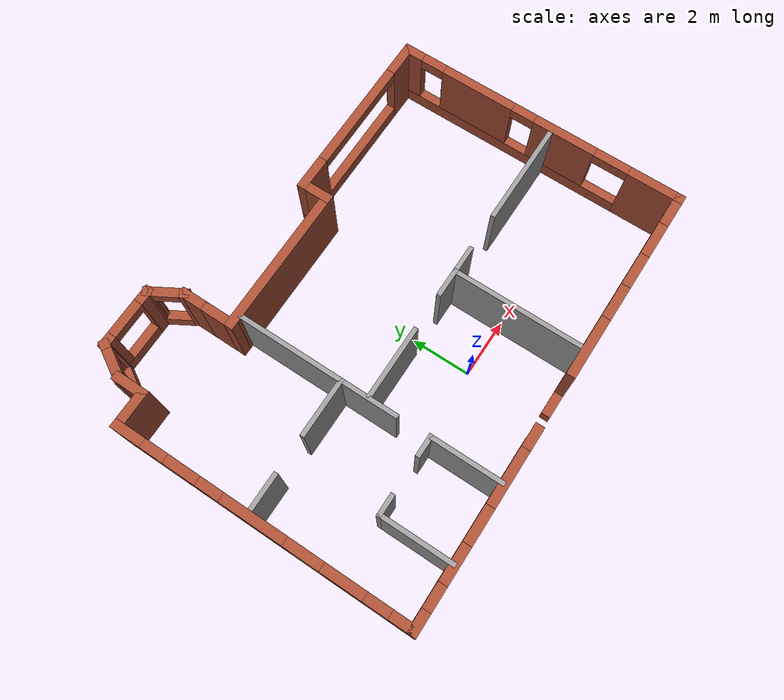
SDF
<?xml version='1.0'?>
<sdf version='1.6'>
  <model name='mybuilding'>
    <pose frame=''>0.115 3.1719 0 0 -0 0</pose>
    <link name='Wall_104'>
      <collision name='Wall_104_Collision'>
        <geometry>
          <box>
            <size>2.46958 0.15 2.5</size>
          </box>
        </geometry>
        <pose frame=''>0 0 1.25 0 -0 0</pose>
      </collision>
      <visual name='Wall_104_Visual'>
        <pose frame=''>0 0 1.25 0 -0 0</pose>
        <geometry>
          <box>
            <size>2.46958 0.15 2.5</size>
          </box>
        </geometry>
        <material>
          <script>
            <uri>file://media/materials/scripts/gazebo.material</uri>
            <name>Gazebo/Grey</name>
          </script>
          <ambient>1 1 1 1</ambient>
        </material>
        <meta>
          <layer>0</layer>
        </meta>
      </visual>
      <pose frame=''>-2.91739 -4.64446 0 0 -0 -1.5708</pose>
    </link>
    <link name='Wall_106'>
      <collision name='Wall_106_Collision'>
        <geometry>
          <box>
            <size>1 0.15 2.5</size>
          </box>
        </geometry>
        <pose frame=''>0 0 1.25 0 -0 0</pose>
      </collision>
      <visual name='Wall_106_Visual'>
        <pose frame=''>0 0 1.25 0 -0 0</pose>
        <geometry>
          <box>
            <size>1 0.15 2.5</size>
          </box>
        </geometry>
        <material>
          <script>
            <uri>file://media/materials/scripts/gazebo.material</uri>
            <name>Gazebo/Grey</name>
          </script>
          <ambient>1 1 1 1</ambient>
        </material>
        <meta>
          <layer>0</layer>
        </meta>
      </visual>
      <pose frame=''>2.09395 -1.40936 0 0 -0 0</pose>
    </link>
    <link name='Wall_108'>
      <collision name='Wall_108_Collision'>
        <geometry>
          <box>
            <size>3.5 0.15 2.5</size>
          </box>
        </geometry>
        <pose frame=''>0 0 1.25 0 -0 0</pose>
      </collision>
      <visual name='Wall_108_Visual'>
        <pose frame=''>0 0 1.25 0 -0 0</pose>
        <geometry>
          <box>
            <size>3.5 0.15 2.5</size>
          </box>
        </geometry>
        <material>
          <script>
            <uri>file://media/materials/scripts/gazebo.material</uri>
            <name>Gazebo/Grey</name>
          </script>
          <ambient>1 1 1 1</ambient>
        </material>
        <meta>
          <layer>0</layer>
        </meta>
      </visual>
      <pose frame=''>5.54395 -1.40936 0 0 -0 0</pose>
    </link>
    <link name='Wall_111'>
      <collision name='Wall_111_Collision'>
        <geometry>
          <box>
            <size>2 0.15 2.5</size>
          </box>
        </geometry>
        <pose frame=''>0 0 1.25 0 -0 0</pose>
      </collision>
      <visual name='Wall_111_Visual'>
        <pose frame=''>0 0 1.25 0 -0 0</pose>
        <geometry>
          <box>
            <size>2 0.15 2.5</size>
          </box>
        </geometry>
        <material>
          <script>
            <uri>file://media/materials/scripts/gazebo.material</uri>
            <name>Gazebo/Grey</name>
          </script>
          <ambient>1 1 1 1</ambient>
        </material>
        <meta>
          <layer>0</layer>
        </meta>
      </visual>
      <pose frame=''>-3.87183 -0.484139 0 0 -0 0</pose>
    </link>
    <link name='Wall_113'>
      <collision name='Wall_113_Collision'>
        <geometry>
          <box>
            <size>0.75 0.15 2.5</size>
          </box>
        </geometry>
        <pose frame=''>0 0 1.25 0 -0 0</pose>
      </collision>
      <visual name='Wall_113_Visual'>
        <pose frame=''>0 0 1.25 0 -0 0</pose>
        <geometry>
          <box>
            <size>0.75 0.15 2.5</size>
          </box>
        </geometry>
        <material>
          <script>
            <uri>file://media/materials/scripts/gazebo.material</uri>
            <name>Gazebo/Grey</name>
          </script>
          <ambient>1 1 1 1</ambient>
        </material>
        <meta>
          <layer>0</layer>
        </meta>
      </visual>
      <pose frame=''>-3.21739 -3.46946 0 0 -0 3.14159</pose>
    </link>
    <link name='Wall_120'>
      <collision name='Wall_120_Collision'>
        <geometry>
          <box>
            <size>0.75 0.15 2.5</size>
          </box>
        </geometry>
        <pose frame=''>0 0 1.25 0 -0 0</pose>
      </collision>
      <visual name='Wall_120_Visual'>
        <pose frame=''>0 0 1.25 0 -0 0</pose>
        <geometry>
          <box>
            <size>0.75 0.15 2.5</size>
          </box>
        </geometry>
        <material>
          <script>
            <uri>file://media/materials/scripts/gazebo.material</uri>
            <name>Gazebo/Grey</name>
          </script>
          <ambient>1 1 1 1</ambient>
        </material>
        <meta>
          <layer>0</layer>
        </meta>
      </visual>
      <pose frame=''>-5.16739 -3.46946 0 0 -0 3.14159</pose>
    </link>
    <link name='Wall_121'>
      <collision name='Wall_121_Collision'>
        <geometry>
          <box>
            <size>2.5 0.15 2.5</size>
          </box>
        </geometry>
        <pose frame=''>0 0 1.25 0 -0 0</pose>
      </collision>
      <visual name='Wall_121_Visual'>
        <pose frame=''>0 0 1.25 0 -0 0</pose>
        <geometry>
          <box>
            <size>2.5 0.15 2.5</size>
          </box>
        </geometry>
        <material>
          <script>
            <uri>file://media/materials/scripts/gazebo.material</uri>
            <name>Gazebo/Grey</name>
          </script>
          <ambient>1 1 1 1</ambient>
        </material>
        <meta>
          <layer>0</layer>
        </meta>
      </visual>
      <pose frame=''>-5.46739 -4.64446 0 0 -0 -1.5708</pose>
    </link>
    <link name='Wall_123'>
      <collision name='Wall_123_Collision'>
        <geometry>
          <box>
            <size>1 0.15 2.5</size>
          </box>
        </geometry>
        <pose frame=''>0 0 1.25 0 -0 0</pose>
      </collision>
      <visual name='Wall_123_Visual'>
        <pose frame=''>0 0 1.25 0 -0 0</pose>
        <geometry>
          <box>
            <size>1 0.15 2.5</size>
          </box>
        </geometry>
        <material>
          <script>
            <uri>file://media/materials/scripts/gazebo.material</uri>
            <name>Gazebo/Grey</name>
          </script>
          <ambient>1 1 1 1</ambient>
        </material>
        <meta>
          <layer>0</layer>
        </meta>
      </visual>
      <pose frame=''>1.24395 -1.40936 0 0 -0 3.14159</pose>
    </link>
    <link name='Wall_127'>
      <collision name='Wall_127_Collision'>
        <geometry>
          <box>
            <size>3.75 0.15 2.5</size>
          </box>
        </geometry>
        <pose frame=''>0 0 1.25 0 -0 0</pose>
      </collision>
      <visual name='Wall_127_Visual'>
        <pose frame=''>0 0 1.25 0 -0 0</pose>
        <geometry>
          <box>
            <size>3.75 0.15 2.5</size>
          </box>
        </geometry>
        <material>
          <script>
            <uri>file://media/materials/scripts/gazebo.material</uri>
            <name>Gazebo/Grey</name>
          </script>
          <ambient>1 1 1 1</ambient>
        </material>
        <meta>
          <layer>0</layer>
        </meta>
      </visual>
      <pose frame=''>-2.94683 1.31586 0 0 -0 1.5708</pose>
    </link>
    <link name='Wall_129'>
      <collision name='Wall_129_Collision'>
        <geometry>
          <box>
            <size>2 0.15 2.5</size>
          </box>
        </geometry>
        <pose frame=''>0 0 1.25 0 -0 0</pose>
      </collision>
      <visual name='Wall_129_Visual'>
        <pose frame=''>0 0 1.25 0 -0 0</pose>
        <geometry>
          <box>
            <size>2 0.15 2.5</size>
          </box>
        </geometry>
        <material>
          <script>
            <uri>file://media/materials/scripts/gazebo.material</uri>
            <name>Gazebo/Grey</name>
          </script>
          <ambient>1 1 1 1</ambient>
        </material>
        <meta>
          <layer>0</layer>
        </meta>
      </visual>
      <pose frame=''>-2.94683 -1.40914 0 0 -0 -1.5708</pose>
    </link>
    <link name='Wall_132'>
      <collision name='Wall_132_Collision'>
        <geometry>
          <box>
            <size>2.5 0.15 2.5</size>
          </box>
        </geometry>
        <pose frame=''>0 0 1.25 0 -0 0</pose>
      </collision>
      <visual name='Wall_132_Visual'>
        <pose frame=''>0 0 1.25 0 -0 0</pose>
        <geometry>
          <box>
            <size>2.5 0.15 2.5</size>
          </box>
        </geometry>
        <material>
          <script>
            <uri>file://media/materials/scripts/gazebo.material</uri>
            <name>Gazebo/Grey</name>
          </script>
          <ambient>1 1 1 1</ambient>
        </material>
        <meta>
          <layer>0</layer>
        </meta>
      </visual>
      <pose frame=''>-1.70605 -1.40936 0 0 -0 3.14159</pose>
    </link>
    <link name='Wall_50'>
      <pose frame=''>-7.435 -0.928903 0 0 -0 -1.5708</pose>
      <visual name='Wall_50_Visual_0'>
        <pose frame=''>-4.54792 0 1.25 0 -0 0</pose>
        <geometry>
          <box>
            <size>1.05393 0.3 2.5</size>
          </box>
        </geometry>
        <material>
          <script>
            <uri>file://media/materials/scripts/gazebo.material</uri>
            <name>Gazebo/Bricks</name>
          </script>
          <ambient>1 1 1 1</ambient>
        </material>
        <meta>
          <layer>0</layer>
        </meta>
      </visual>
      <collision name='Wall_50_Collision_0'>
        <geometry>
          <box>
            <size>1.05393 0.3 2.5</size>
          </box>
        </geometry>
        <pose frame=''>-4.54792 0 1.25 0 -0 0</pose>
      </collision>
      <visual name='Wall_50_Visual_1'>
        <pose frame=''>0.526964 0 0.25 0 -0 0</pose>
        <geometry>
          <box>
            <size>9.09584 0.3 0.5</size>
          </box>
        </geometry>
        <material>
          <script>
            <uri>file://media/materials/scripts/gazebo.material</uri>
            <name>Gazebo/Bricks</name>
          </script>
          <ambient>1 1 1 1</ambient>
        </material>
        <meta>
          <layer>0</layer>
        </meta>
      </visual>
      <collision name='Wall_50_Collision_1'>
        <geometry>
          <box>
            <size>9.09584 0.3 0.5</size>
          </box>
        </geometry>
        <pose frame=''>0.526964 0 0.25 0 -0 0</pose>
      </collision>
      <visual name='Wall_50_Visual_2'>
        <pose frame=''>-2.66775 0 1.5 0 -0 0</pose>
        <geometry>
          <box>
            <size>1.10642 0.3 2</size>
          </box>
        </geometry>
        <material>
          <script>
            <uri>file://media/materials/scripts/gazebo.material</uri>
            <name>Gazebo/Bricks</name>
          </script>
          <ambient>1 1 1 1</ambient>
        </material>
        <meta>
          <layer>0</layer>
        </meta>
      </visual>
      <collision name='Wall_50_Collision_2'>
        <geometry>
          <box>
            <size>1.10642 0.3 2</size>
          </box>
        </geometry>
        <pose frame=''>-2.66775 0 1.5 0 -0 0</pose>
      </collision>
      <visual name='Wall_50_Visual_3'>
        <pose frame=''>-0.24918 0 1.5 0 -0 0</pose>
        <geometry>
          <box>
            <size>2.13072 0.3 2</size>
          </box>
        </geometry>
        <material>
          <script>
            <uri>file://media/materials/scripts/gazebo.material</uri>
            <name>Gazebo/Bricks</name>
          </script>
          <ambient>1 1 1 1</ambient>
        </material>
        <meta>
          <layer>0</layer>
        </meta>
      </visual>
      <collision name='Wall_50_Collision_3'>
        <geometry>
          <box>
            <size>2.13072 0.3 2</size>
          </box>
        </geometry>
        <pose frame=''>-0.24918 0 1.5 0 -0 0</pose>
      </collision>
      <visual name='Wall_50_Visual_4'>
        <pose frame=''>2.70551 0 1.5 0 -0 0</pose>
        <geometry>
          <box>
            <size>1.37865 0.3 2</size>
          </box>
        </geometry>
        <material>
          <script>
            <uri>file://media/materials/scripts/gazebo.material</uri>
            <name>Gazebo/Bricks</name>
          </script>
          <ambient>1 1 1 1</ambient>
        </material>
        <meta>
          <layer>0</layer>
        </meta>
      </visual>
      <collision name='Wall_50_Collision_4'>
        <geometry>
          <box>
            <size>1.37865 0.3 2</size>
          </box>
        </geometry>
        <pose frame=''>2.70551 0 1.5 0 -0 0</pose>
      </collision>
      <visual name='Wall_50_Visual_5'>
        <pose frame=''>4.63486 0 1.5 0 -0 0</pose>
        <geometry>
          <box>
            <size>0.880056 0.3 2</size>
          </box>
        </geometry>
        <material>
          <script>
            <uri>file://media/materials/scripts/gazebo.material</uri>
            <name>Gazebo/Bricks</name>
          </script>
          <ambient>1 1 1 1</ambient>
        </material>
        <meta>
          <layer>0</layer>
        </meta>
      </visual>
      <collision name='Wall_50_Collision_5'>
        <geometry>
          <box>
            <size>0.880056 0.3 2</size>
          </box>
        </geometry>
        <pose frame=''>4.63486 0 1.5 0 -0 0</pose>
      </collision>
      <visual name='Wall_50_Visual_6'>
        <pose frame=''>-3.62096 0 2.3 0 -0 0</pose>
        <geometry>
          <box>
            <size>0.8 0.3 0.4</size>
          </box>
        </geometry>
        <material>
          <script>
            <uri>file://media/materials/scripts/gazebo.material</uri>
            <name>Gazebo/Bricks</name>
          </script>
          <ambient>1 1 1 1</ambient>
        </material>
        <meta>
          <layer>0</layer>
        </meta>
      </visual>
      <collision name='Wall_50_Collision_6'>
        <geometry>
          <box>
            <size>0.8 0.3 0.4</size>
          </box>
        </geometry>
        <pose frame=''>-3.62096 0 2.3 0 -0 0</pose>
      </collision>
      <visual name='Wall_50_Visual_7'>
        <pose frame=''>-1.71454 0 2.3 0 -0 0</pose>
        <geometry>
          <box>
            <size>0.8 0.3 0.4</size>
          </box>
        </geometry>
        <material>
          <script>
            <uri>file://media/materials/scripts/gazebo.material</uri>
            <name>Gazebo/Bricks</name>
          </script>
          <ambient>1 1 1 1</ambient>
        </material>
        <meta>
          <layer>0</layer>
        </meta>
      </visual>
      <collision name='Wall_50_Collision_7'>
        <geometry>
          <box>
            <size>0.8 0.3 0.4</size>
          </box>
        </geometry>
        <pose frame=''>-1.71454 0 2.3 0 -0 0</pose>
      </collision>
      <visual name='Wall_50_Visual_8'>
        <pose frame=''>1.41618 0 2.3 0 -0 0</pose>
        <geometry>
          <box>
            <size>1.2 0.3 0.4</size>
          </box>
        </geometry>
        <material>
          <script>
            <uri>file://media/materials/scripts/gazebo.material</uri>
            <name>Gazebo/Bricks</name>
          </script>
          <ambient>1 1 1 1</ambient>
        </material>
        <meta>
          <layer>0</layer>
        </meta>
      </visual>
      <collision name='Wall_50_Collision_8'>
        <geometry>
          <box>
            <size>1.2 0.3 0.4</size>
          </box>
        </geometry>
        <pose frame=''>1.41618 0 2.3 0 -0 0</pose>
      </collision>
      <visual name='Wall_50_Visual_9'>
        <pose frame=''>3.79483 0 2.3 0 -0 0</pose>
        <geometry>
          <box>
            <size>0.8 0.3 0.4</size>
          </box>
        </geometry>
        <material>
          <script>
            <uri>file://media/materials/scripts/gazebo.material</uri>
            <name>Gazebo/Bricks</name>
          </script>
          <ambient>1 1 1 1</ambient>
        </material>
        <meta>
          <layer>0</layer>
        </meta>
      </visual>
      <collision name='Wall_50_Collision_9'>
        <geometry>
          <box>
            <size>0.8 0.3 0.4</size>
          </box>
        </geometry>
        <pose frame=''>3.79483 0 2.3 0 -0 0</pose>
      </collision>
    </link>
    <link name='Wall_51'>
      <pose frame=''>-0 -5.8539 0 0 -0 0</pose>
      <visual name='Wall_51_Visual_0'>
        <pose frame=''>-7.21587 0 1.25 0 -0 0</pose>
        <geometry>
          <box>
            <size>0.738261 0.3 2.5</size>
          </box>
        </geometry>
        <material>
          <script>
            <uri>file://media/materials/scripts/gazebo.material</uri>
            <name>Gazebo/Bricks</name>
          </script>
          <ambient>1 1 1 1</ambient>
        </material>
        <meta>
          <layer>0</layer>
        </meta>
      </visual>
      <collision name='Wall_51_Collision_0'>
        <geometry>
          <box>
            <size>0.738261 0.3 2.5</size>
          </box>
        </geometry>
        <pose frame=''>-7.21587 0 1.25 0 -0 0</pose>
      </collision>
      <visual name='Wall_51_Visual_1'>
        <pose frame=''>3.76088 0 0.25 0 -0 0</pose>
        <geometry>
          <box>
            <size>7.64824 0.3 0.5</size>
          </box>
        </geometry>
        <material>
          <script>
            <uri>file://media/materials/scripts/gazebo.material</uri>
            <name>Gazebo/Bricks</name>
          </script>
          <ambient>1 1 1 1</ambient>
        </material>
        <meta>
          <layer>0</layer>
        </meta>
      </visual>
      <collision name='Wall_51_Collision_1'>
        <geometry>
          <box>
            <size>7.64824 0.3 0.5</size>
          </box>
        </geometry>
        <pose frame=''>3.76088 0 0.25 0 -0 0</pose>
      </collision>
      <visual name='Wall_51_Visual_2'>
        <pose frame=''>-3.90499 0 0.25 0 -0 0</pose>
        <geometry>
          <box>
            <size>5.8835 0.3 0.5</size>
          </box>
        </geometry>
        <material>
          <script>
            <uri>file://media/materials/scripts/gazebo.material</uri>
            <name>Gazebo/Bricks</name>
          </script>
          <ambient>1 1 1 1</ambient>
        </material>
        <meta>
          <layer>0</layer>
        </meta>
      </visual>
      <collision name='Wall_51_Collision_2'>
        <geometry>
          <box>
            <size>5.8835 0.3 0.5</size>
          </box>
        </geometry>
        <pose frame=''>-3.90499 0 0.25 0 -0 0</pose>
      </collision>
      <visual name='Wall_51_Visual_3'>
        <pose frame=''>1.77472 0 1.5 0 -0 0</pose>
        <geometry>
          <box>
            <size>2.08637 0.3 2</size>
          </box>
        </geometry>
        <material>
          <script>
            <uri>file://media/materials/scripts/gazebo.material</uri>
            <name>Gazebo/Bricks</name>
          </script>
          <ambient>1 1 1 1</ambient>
        </material>
        <meta>
          <layer>0</layer>
        </meta>
      </visual>
      <collision name='Wall_51_Collision_3'>
        <geometry>
          <box>
            <size>2.08637 0.3 2</size>
          </box>
        </geometry>
        <pose frame=''>1.77472 0 1.5 0 -0 0</pose>
      </collision>
      <visual name='Wall_51_Visual_4'>
        <pose frame=''>4.60722 0 1.5 0 -0 0</pose>
        <geometry>
          <box>
            <size>1.17865 0.3 2</size>
          </box>
        </geometry>
        <material>
          <script>
            <uri>file://media/materials/scripts/gazebo.material</uri>
            <name>Gazebo/Bricks</name>
          </script>
          <ambient>1 1 1 1</ambient>
        </material>
        <meta>
          <layer>0</layer>
        </meta>
      </visual>
      <collision name='Wall_51_Collision_4'>
        <geometry>
          <box>
            <size>1.17865 0.3 2</size>
          </box>
        </geometry>
        <pose frame=''>4.60722 0 1.5 0 -0 0</pose>
      </collision>
      <visual name='Wall_51_Visual_5'>
        <pose frame=''>6.99077 0 1.5 0 -0 0</pose>
        <geometry>
          <box>
            <size>1.18845 0.3 2</size>
          </box>
        </geometry>
        <material>
          <script>
            <uri>file://media/materials/scripts/gazebo.material</uri>
            <name>Gazebo/Bricks</name>
          </script>
          <ambient>1 1 1 1</ambient>
        </material>
        <meta>
          <layer>0</layer>
        </meta>
      </visual>
      <collision name='Wall_51_Collision_5'>
        <geometry>
          <box>
            <size>1.18845 0.3 2</size>
          </box>
        </geometry>
        <pose frame=''>6.99077 0 1.5 0 -0 0</pose>
      </collision>
      <visual name='Wall_51_Visual_6'>
        <pose frame=''>-5.44049 0 1.5 0 -0 0</pose>
        <geometry>
          <box>
            <size>1.21249 0.3 2</size>
          </box>
        </geometry>
        <material>
          <script>
            <uri>file://media/materials/scripts/gazebo.material</uri>
            <name>Gazebo/Bricks</name>
          </script>
          <ambient>1 1 1 1</ambient>
        </material>
        <meta>
          <layer>0</layer>
        </meta>
      </visual>
      <collision name='Wall_51_Collision_6'>
        <geometry>
          <box>
            <size>1.21249 0.3 2</size>
          </box>
        </geometry>
        <pose frame=''>-5.44049 0 1.5 0 -0 0</pose>
      </collision>
      <visual name='Wall_51_Visual_7'>
        <pose frame=''>-2.69613 0 1.5 0 -0 0</pose>
        <geometry>
          <box>
            <size>1.87624 0.3 2</size>
          </box>
        </geometry>
        <material>
          <script>
            <uri>file://media/materials/scripts/gazebo.material</uri>
            <name>Gazebo/Bricks</name>
          </script>
          <ambient>1 1 1 1</ambient>
        </material>
        <meta>
          <layer>0</layer>
        </meta>
      </visual>
      <collision name='Wall_51_Collision_7'>
        <geometry>
          <box>
            <size>1.87624 0.3 2</size>
          </box>
        </geometry>
        <pose frame=''>-2.69613 0 1.5 0 -0 0</pose>
      </collision>
      <visual name='Wall_51_Visual_8'>
        <pose frame=''>-2.69613 0 1.5 0 -0 0</pose>
        <geometry>
          <box>
            <size>1.87624 0.3 2</size>
          </box>
        </geometry>
        <material>
          <script>
            <uri>file://media/materials/scripts/gazebo.material</uri>
            <name>Gazebo/Bricks</name>
          </script>
          <ambient>1 1 1 1</ambient>
        </material>
        <meta>
          <layer>0</layer>
        </meta>
      </visual>
      <collision name='Wall_51_Collision_8'>
        <geometry>
          <box>
            <size>1.87624 0.3 2</size>
          </box>
        </geometry>
        <pose frame=''>-2.69613 0 1.5 0 -0 0</pose>
      </collision>
      <visual name='Wall_51_Visual_9'>
        <pose frame=''>-6.44674 0 2.3 0 -0 0</pose>
        <geometry>
          <box>
            <size>0.8 0.3 0.4</size>
          </box>
        </geometry>
        <material>
          <script>
            <uri>file://media/materials/scripts/gazebo.material</uri>
            <name>Gazebo/Bricks</name>
          </script>
          <ambient>1 1 1 1</ambient>
        </material>
        <meta>
          <layer>0</layer>
        </meta>
      </visual>
      <collision name='Wall_51_Collision_9'>
        <geometry>
          <box>
            <size>0.8 0.3 0.4</size>
          </box>
        </geometry>
        <pose frame=''>-6.44674 0 2.3 0 -0 0</pose>
      </collision>
      <visual name='Wall_51_Visual_10'>
        <pose frame=''>3.4179 0 2.3 0 -0 0</pose>
        <geometry>
          <box>
            <size>1.2 0.3 0.4</size>
          </box>
        </geometry>
        <material>
          <script>
            <uri>file://media/materials/scripts/gazebo.material</uri>
            <name>Gazebo/Bricks</name>
          </script>
          <ambient>1 1 1 1</ambient>
        </material>
        <meta>
          <layer>0</layer>
        </meta>
      </visual>
      <collision name='Wall_51_Collision_10'>
        <geometry>
          <box>
            <size>1.2 0.3 0.4</size>
          </box>
        </geometry>
        <pose frame=''>3.4179 0 2.3 0 -0 0</pose>
      </collision>
      <visual name='Wall_51_Visual_11'>
        <pose frame=''>5.79655 0 2.3 0 -0 0</pose>
        <geometry>
          <box>
            <size>1.2 0.3 0.4</size>
          </box>
        </geometry>
        <material>
          <script>
            <uri>file://media/materials/scripts/gazebo.material</uri>
            <name>Gazebo/Bricks</name>
          </script>
          <ambient>1 1 1 1</ambient>
        </material>
        <meta>
          <layer>0</layer>
        </meta>
      </visual>
      <collision name='Wall_51_Collision_11'>
        <geometry>
          <box>
            <size>1.2 0.3 0.4</size>
          </box>
        </geometry>
        <pose frame=''>5.79655 0 2.3 0 -0 0</pose>
      </collision>
      <visual name='Wall_51_Visual_12'>
        <pose frame=''>-4.23425 0 2.3 0 -0 0</pose>
        <geometry>
          <box>
            <size>1.2 0.3 0.4</size>
          </box>
        </geometry>
        <material>
          <script>
            <uri>file://media/materials/scripts/gazebo.material</uri>
            <name>Gazebo/Bricks</name>
          </script>
          <ambient>1 1 1 1</ambient>
        </material>
        <meta>
          <layer>0</layer>
        </meta>
      </visual>
      <collision name='Wall_51_Collision_12'>
        <geometry>
          <box>
            <size>1.2 0.3 0.4</size>
          </box>
        </geometry>
        <pose frame=''>-4.23425 0 2.3 0 -0 0</pose>
      </collision>
      <visual name='Wall_51_Visual_13'>
        <pose frame=''>-1.36062 0 2.3 0 -0 0</pose>
        <geometry>
          <box>
            <size>0.79477 0.3 0.4</size>
          </box>
        </geometry>
        <material>
          <script>
            <uri>file://media/materials/scripts/gazebo.material</uri>
            <name>Gazebo/Bricks</name>
          </script>
          <ambient>1 1 1 1</ambient>
        </material>
        <meta>
          <layer>0</layer>
        </meta>
      </visual>
      <collision name='Wall_51_Collision_13'>
        <geometry>
          <box>
            <size>0.79477 0.3 0.4</size>
          </box>
        </geometry>
        <pose frame=''>-1.36062 0 2.3 0 -0 0</pose>
      </collision>
      <visual name='Wall_51_Visual_14'>
        <pose frame=''>-1.36062 0 2.3 0 -0 0</pose>
        <geometry>
          <box>
            <size>0.79477 0.3 0.4</size>
          </box>
        </geometry>
        <material>
          <script>
            <uri>file://media/materials/scripts/gazebo.material</uri>
            <name>Gazebo/Bricks</name>
          </script>
          <ambient>1 1 1 1</ambient>
        </material>
        <meta>
          <layer>0</layer>
        </meta>
      </visual>
      <collision name='Wall_51_Collision_14'>
        <geometry>
          <box>
            <size>0.79477 0.3 0.4</size>
          </box>
        </geometry>
        <pose frame=''>-1.36062 0 2.3 0 -0 0</pose>
      </collision>
    </link>
    <link name='Wall_52'>
      <pose frame=''>7.435 -0.928903 0 0 -0 1.5708</pose>
      <visual name='Wall_52_Visual_0'>
        <pose frame=''>-4.13433 0 1.25 0 -0 0</pose>
        <geometry>
          <box>
            <size>1.88156 0.3 2.5</size>
          </box>
        </geometry>
        <material>
          <script>
            <uri>file://media/materials/scripts/gazebo.material</uri>
            <name>Gazebo/Bricks</name>
          </script>
          <ambient>1 1 1 1</ambient>
        </material>
        <meta>
          <layer>0</layer>
        </meta>
      </visual>
      <collision name='Wall_52_Collision_0'>
        <geometry>
          <box>
            <size>1.88156 0.3 2.5</size>
          </box>
        </geometry>
        <pose frame=''>-4.13433 0 1.25 0 -0 0</pose>
      </collision>
      <visual name='Wall_52_Visual_1'>
        <pose frame=''>0.940781 0 0.25 0 -0 0</pose>
        <geometry>
          <box>
            <size>8.26867 0.3 0.5</size>
          </box>
        </geometry>
        <material>
          <script>
            <uri>file://media/materials/scripts/gazebo.material</uri>
            <name>Gazebo/Bricks</name>
          </script>
          <ambient>1 1 1 1</ambient>
        </material>
        <meta>
          <layer>0</layer>
        </meta>
      </visual>
      <collision name='Wall_52_Collision_1'>
        <geometry>
          <box>
            <size>8.26867 0.3 0.5</size>
          </box>
        </geometry>
        <pose frame=''>0.940781 0 0.25 0 -0 0</pose>
      </collision>
      <visual name='Wall_52_Visual_2'>
        <pose frame=''>-0.919448 0 1.5 0 -0 0</pose>
        <geometry>
          <box>
            <size>2.14821 0.3 2</size>
          </box>
        </geometry>
        <material>
          <script>
            <uri>file://media/materials/scripts/gazebo.material</uri>
            <name>Gazebo/Bricks</name>
          </script>
          <ambient>1 1 1 1</ambient>
        </material>
        <meta>
          <layer>0</layer>
        </meta>
      </visual>
      <collision name='Wall_52_Collision_2'>
        <geometry>
          <box>
            <size>2.14821 0.3 2</size>
          </box>
        </geometry>
        <pose frame=''>-0.919448 0 1.5 0 -0 0</pose>
      </collision>
      <visual name='Wall_52_Visual_3'>
        <pose frame=''>2.23647 0 1.5 0 -0 0</pose>
        <geometry>
          <box>
            <size>2.56363 0.3 2</size>
          </box>
        </geometry>
        <material>
          <script>
            <uri>file://media/materials/scripts/gazebo.material</uri>
            <name>Gazebo/Bricks</name>
          </script>
          <ambient>1 1 1 1</ambient>
        </material>
        <meta>
          <layer>0</layer>
        </meta>
      </visual>
      <collision name='Wall_52_Collision_3'>
        <geometry>
          <box>
            <size>2.56363 0.3 2</size>
          </box>
        </geometry>
        <pose frame=''>2.23647 0 1.5 0 -0 0</pose>
      </collision>
      <visual name='Wall_52_Visual_4'>
        <pose frame=''>4.6967 0 1.5 0 -0 0</pose>
        <geometry>
          <box>
            <size>0.756827 0.3 2</size>
          </box>
        </geometry>
        <material>
          <script>
            <uri>file://media/materials/scripts/gazebo.material</uri>
            <name>Gazebo/Bricks</name>
          </script>
          <ambient>1 1 1 1</ambient>
        </material>
        <meta>
          <layer>0</layer>
        </meta>
      </visual>
      <collision name='Wall_52_Collision_4'>
        <geometry>
          <box>
            <size>0.756827 0.3 2</size>
          </box>
        </geometry>
        <pose frame=''>4.6967 0 1.5 0 -0 0</pose>
      </collision>
      <visual name='Wall_52_Visual_5'>
        <pose frame=''>-2.59355 0 2.3 0 -0 0</pose>
        <geometry>
          <box>
            <size>1.2 0.3 0.4</size>
          </box>
        </geometry>
        <material>
          <script>
            <uri>file://media/materials/scripts/gazebo.material</uri>
            <name>Gazebo/Bricks</name>
          </script>
          <ambient>1 1 1 1</ambient>
        </material>
        <meta>
          <layer>0</layer>
        </meta>
      </visual>
      <collision name='Wall_52_Collision_5'>
        <geometry>
          <box>
            <size>1.2 0.3 0.4</size>
          </box>
        </geometry>
        <pose frame=''>-2.59355 0 2.3 0 -0 0</pose>
      </collision>
      <visual name='Wall_52_Visual_6'>
        <pose frame=''>0.554658 0 2.3 0 -0 0</pose>
        <geometry>
          <box>
            <size>0.8 0.3 0.4</size>
          </box>
        </geometry>
        <material>
          <script>
            <uri>file://media/materials/scripts/gazebo.material</uri>
            <name>Gazebo/Bricks</name>
          </script>
          <ambient>1 1 1 1</ambient>
        </material>
        <meta>
          <layer>0</layer>
        </meta>
      </visual>
      <collision name='Wall_52_Collision_6'>
        <geometry>
          <box>
            <size>0.8 0.3 0.4</size>
          </box>
        </geometry>
        <pose frame=''>0.554658 0 2.3 0 -0 0</pose>
      </collision>
      <visual name='Wall_52_Visual_7'>
        <pose frame=''>3.91829 0 2.3 0 -0 0</pose>
        <geometry>
          <box>
            <size>0.8 0.3 0.4</size>
          </box>
        </geometry>
        <material>
          <script>
            <uri>file://media/materials/scripts/gazebo.material</uri>
            <name>Gazebo/Bricks</name>
          </script>
          <ambient>1 1 1 1</ambient>
        </material>
        <meta>
          <layer>0</layer>
        </meta>
      </visual>
      <collision name='Wall_52_Collision_7'>
        <geometry>
          <box>
            <size>0.8 0.3 0.4</size>
          </box>
        </geometry>
        <pose frame=''>3.91829 0 2.3 0 -0 0</pose>
      </collision>
    </link>
    <link name='Wall_57'>
      <pose frame=''>4.5 3.9961 0 0 -0 3.14159</pose>
      <visual name='Wall_57_Visual_0'>
        <pose frame=''>-2.49359 0 1.25 0 -0 0</pose>
        <geometry>
          <box>
            <size>1.1832 0.3 2.5</size>
          </box>
        </geometry>
        <material>
          <script>
            <uri>file://media/materials/scripts/gazebo.material</uri>
            <name>Gazebo/Bricks</name>
          </script>
          <ambient>1 1 1 1</ambient>
        </material>
        <meta>
          <layer>0</layer>
        </meta>
      </visual>
      <collision name='Wall_57_Collision_0'>
        <geometry>
          <box>
            <size>1.1832 0.3 2.5</size>
          </box>
        </geometry>
        <pose frame=''>-2.49359 0 1.25 0 -0 0</pose>
      </collision>
      <visual name='Wall_57_Visual_1'>
        <pose frame=''>0.591601 0 0.25 0 -0 0</pose>
        <geometry>
          <box>
            <size>4.98717 0.3 0.5</size>
          </box>
        </geometry>
        <material>
          <script>
            <uri>file://media/materials/scripts/gazebo.material</uri>
            <name>Gazebo/Bricks</name>
          </script>
          <ambient>1 1 1 1</ambient>
        </material>
        <meta>
          <layer>0</layer>
        </meta>
      </visual>
      <collision name='Wall_57_Collision_1'>
        <geometry>
          <box>
            <size>4.98717 0.3 0.5</size>
          </box>
        </geometry>
        <pose frame=''>0.591601 0 0.25 0 -0 0</pose>
      </collision>
      <visual name='Wall_57_Visual_2'>
        <pose frame=''>2.4916 0 1.5 0 -0 0</pose>
        <geometry>
          <box>
            <size>1.18717 0.3 2</size>
          </box>
        </geometry>
        <material>
          <script>
            <uri>file://media/materials/scripts/gazebo.material</uri>
            <name>Gazebo/Bricks</name>
          </script>
          <ambient>1 1 1 1</ambient>
        </material>
        <meta>
          <layer>0</layer>
        </meta>
      </visual>
      <collision name='Wall_57_Collision_2'>
        <geometry>
          <box>
            <size>1.18717 0.3 2</size>
          </box>
        </geometry>
        <pose frame=''>2.4916 0 1.5 0 -0 0</pose>
      </collision>
      <visual name='Wall_57_Visual_3'>
        <pose frame=''>-0.001987 0 2.3 0 -0 0</pose>
        <geometry>
          <box>
            <size>3.8 0.3 0.4</size>
          </box>
        </geometry>
        <material>
          <script>
            <uri>file://media/materials/scripts/gazebo.material</uri>
            <name>Gazebo/Bricks</name>
          </script>
          <ambient>1 1 1 1</ambient>
        </material>
        <meta>
          <layer>0</layer>
        </meta>
      </visual>
      <collision name='Wall_57_Collision_3'>
        <geometry>
          <box>
            <size>3.8 0.3 0.4</size>
          </box>
        </geometry>
        <pose frame=''>-0.001987 0 2.3 0 -0 0</pose>
      </collision>
    </link>
    <link name='Wall_58'>
      <collision name='Wall_58_Collision'>
        <geometry>
          <box>
            <size>1.14977 0.3 2.5</size>
          </box>
        </geometry>
        <pose frame=''>0 0 1.25 0 -0 0</pose>
      </collision>
      <visual name='Wall_58_Visual'>
        <pose frame=''>0 0 1.25 0 -0 0</pose>
        <geometry>
          <box>
            <size>1.14977 0.3 2.5</size>
          </box>
        </geometry>
        <material>
          <script>
            <uri>file://media/materials/scripts/gazebo.material</uri>
            <name>Gazebo/Bricks</name>
          </script>
          <ambient>1 1 1 1</ambient>
        </material>
        <meta>
          <layer>0</layer>
        </meta>
      </visual>
      <pose frame=''>1.565 3.5711 0 0 -0 -1.5708</pose>
    </link>
    <link name='Wall_68'>
      <collision name='Wall_68_Collision'>
        <geometry>
          <box>
            <size>1.15023 0.3 2.5</size>
          </box>
        </geometry>
        <pose frame=''>0 0 1.25 0 -0 0</pose>
      </collision>
      <visual name='Wall_68_Visual'>
        <pose frame=''>0 0 1.25 0 -0 0</pose>
        <geometry>
          <box>
            <size>1.15023 0.3 2.5</size>
          </box>
        </geometry>
        <material>
          <script>
            <uri>file://media/materials/scripts/gazebo.material</uri>
            <name>Gazebo/Bricks</name>
          </script>
          <ambient>1 1 1 1</ambient>
        </material>
        <meta>
          <layer>0</layer>
        </meta>
      </visual>
      <pose frame=''>-3.285 3.5711 0 0 -0 1.5708</pose>
    </link>
    <link name='Wall_69'>
      <collision name='Wall_69_Collision'>
        <geometry>
          <box>
            <size>1.15023 0.3 2.5</size>
          </box>
        </geometry>
        <pose frame=''>0 0 1.25 0 -0 0</pose>
      </collision>
      <visual name='Wall_69_Visual'>
        <pose frame=''>0 0 1.25 0 -0 0</pose>
        <geometry>
          <box>
            <size>1.15023 0.3 2.5</size>
          </box>
        </geometry>
        <material>
          <script>
            <uri>file://media/materials/scripts/gazebo.material</uri>
            <name>Gazebo/Bricks</name>
          </script>
          <ambient>1 1 1 1</ambient>
        </material>
        <meta>
          <layer>0</layer>
        </meta>
      </visual>
      <pose frame=''>-3.285 4.4211 0 0 -0 1.5708</pose>
    </link>
    <link name='Wall_75'>
      <collision name='Wall_75_Collision'>
        <geometry>
          <box>
            <size>1.15 0.3 2.5</size>
          </box>
        </geometry>
        <pose frame=''>0 0 1.25 0 -0 0</pose>
      </collision>
      <visual name='Wall_75_Visual'>
        <pose frame=''>0 0 1.25 0 -0 0</pose>
        <geometry>
          <box>
            <size>1.15 0.3 2.5</size>
          </box>
        </geometry>
        <material>
          <script>
            <uri>file://media/materials/scripts/gazebo.material</uri>
            <name>Gazebo/Bricks</name>
          </script>
          <ambient>1 1 1 1</ambient>
        </material>
        <meta>
          <layer>0</layer>
        </meta>
      </visual>
      <pose frame=''>-6.337 4.4211 0 0 -0 -1.5708</pose>
    </link>
    <link name='Wall_76'>
      <collision name='Wall_76_Collision'>
        <geometry>
          <box>
            <size>1.39837 0.3 2.5</size>
          </box>
        </geometry>
        <pose frame=''>0 0 1.25 0 -0 0</pose>
      </collision>
      <visual name='Wall_76_Visual'>
        <pose frame=''>0 0 1.25 0 -0 0</pose>
        <geometry>
          <box>
            <size>1.39837 0.3 2.5</size>
          </box>
        </geometry>
        <material>
          <script>
            <uri>file://media/materials/scripts/gazebo.material</uri>
            <name>Gazebo/Bricks</name>
          </script>
          <ambient>1 1 1 1</ambient>
        </material>
        <meta>
          <layer>0</layer>
        </meta>
      </visual>
      <pose frame=''>-6.886 3.9961 0 0 -0 3.14159</pose>
    </link>
    <link name='Wall_78'>
      <pose frame=''>-6.062 5.3226 0 0 -0 1.04737</pose>
      <visual name='Wall_78_Visual_0'>
        <pose frame=''>-0.549819 0 1.25 0 -0 0</pose>
        <geometry>
          <box>
            <size>0.300684 0.3 2.5</size>
          </box>
        </geometry>
        <material>
          <script>
            <uri>file://media/materials/scripts/gazebo.material</uri>
            <name>Gazebo/Bricks</name>
          </script>
          <ambient>1 1 1 1</ambient>
        </material>
        <meta>
          <layer>0</layer>
        </meta>
      </visual>
      <collision name='Wall_78_Collision_0'>
        <geometry>
          <box>
            <size>0.300684 0.3 2.5</size>
          </box>
        </geometry>
        <pose frame=''>-0.549819 0 1.25 0 -0 0</pose>
      </collision>
      <visual name='Wall_78_Visual_1'>
        <pose frame=''>0.150342 0 0.25 0 -0 0</pose>
        <geometry>
          <box>
            <size>1.09964 0.3 0.5</size>
          </box>
        </geometry>
        <material>
          <script>
            <uri>file://media/materials/scripts/gazebo.material</uri>
            <name>Gazebo/Bricks</name>
          </script>
          <ambient>1 1 1 1</ambient>
        </material>
        <meta>
          <layer>0</layer>
        </meta>
      </visual>
      <collision name='Wall_78_Collision_1'>
        <geometry>
          <box>
            <size>1.09964 0.3 0.5</size>
          </box>
        </geometry>
        <pose frame=''>0.150342 0 0.25 0 -0 0</pose>
      </collision>
      <visual name='Wall_78_Visual_2'>
        <pose frame=''>0.550342 0 1.5 0 -0 0</pose>
        <geometry>
          <box>
            <size>0.299638 0.3 2</size>
          </box>
        </geometry>
        <material>
          <script>
            <uri>file://media/materials/scripts/gazebo.material</uri>
            <name>Gazebo/Bricks</name>
          </script>
          <ambient>1 1 1 1</ambient>
        </material>
        <meta>
          <layer>0</layer>
        </meta>
      </visual>
      <collision name='Wall_78_Collision_2'>
        <geometry>
          <box>
            <size>0.299638 0.3 2</size>
          </box>
        </geometry>
        <pose frame=''>0.550342 0 1.5 0 -0 0</pose>
      </collision>
      <visual name='Wall_78_Visual_3'>
        <pose frame=''>0.000523 0 2.3 0 -0 0</pose>
        <geometry>
          <box>
            <size>0.8 0.3 0.4</size>
          </box>
        </geometry>
        <material>
          <script>
            <uri>file://media/materials/scripts/gazebo.material</uri>
            <name>Gazebo/Bricks</name>
          </script>
          <ambient>1 1 1 1</ambient>
        </material>
        <meta>
          <layer>0</layer>
        </meta>
      </visual>
      <collision name='Wall_78_Collision_3'>
        <geometry>
          <box>
            <size>0.8 0.3 0.4</size>
          </box>
        </geometry>
        <pose frame=''>0.000523 0 2.3 0 -0 0</pose>
      </collision>
    </link>
    <link name='Wall_80'>
      <pose frame=''>-3.56 5.3226 0 0 -0 2.09423</pose>
      <visual name='Wall_80_Visual_0'>
        <pose frame=''>-0.550396 0 1.25 0 -0 0</pose>
        <geometry>
          <box>
            <size>0.299594 0.3 2.5</size>
          </box>
        </geometry>
        <material>
          <script>
            <uri>file://media/materials/scripts/gazebo.material</uri>
            <name>Gazebo/Bricks</name>
          </script>
          <ambient>1 1 1 1</ambient>
        </material>
        <meta>
          <layer>0</layer>
        </meta>
      </visual>
      <collision name='Wall_80_Collision_0'>
        <geometry>
          <box>
            <size>0.299594 0.3 2.5</size>
          </box>
        </geometry>
        <pose frame=''>-0.550396 0 1.25 0 -0 0</pose>
      </collision>
      <visual name='Wall_80_Visual_1'>
        <pose frame=''>0.149797 0 0.25 0 -0 0</pose>
        <geometry>
          <box>
            <size>1.10079 0.3 0.5</size>
          </box>
        </geometry>
        <material>
          <script>
            <uri>file://media/materials/scripts/gazebo.material</uri>
            <name>Gazebo/Bricks</name>
          </script>
          <ambient>1 1 1 1</ambient>
        </material>
        <meta>
          <layer>0</layer>
        </meta>
      </visual>
      <collision name='Wall_80_Collision_1'>
        <geometry>
          <box>
            <size>1.10079 0.3 0.5</size>
          </box>
        </geometry>
        <pose frame=''>0.149797 0 0.25 0 -0 0</pose>
      </collision>
      <visual name='Wall_80_Visual_2'>
        <pose frame=''>0.549797 0 1.5 0 -0 0</pose>
        <geometry>
          <box>
            <size>0.300793 0.3 2</size>
          </box>
        </geometry>
        <material>
          <script>
            <uri>file://media/materials/scripts/gazebo.material</uri>
            <name>Gazebo/Bricks</name>
          </script>
          <ambient>1 1 1 1</ambient>
        </material>
        <meta>
          <layer>0</layer>
        </meta>
      </visual>
      <collision name='Wall_80_Collision_2'>
        <geometry>
          <box>
            <size>0.300793 0.3 2</size>
          </box>
        </geometry>
        <pose frame=''>0.549797 0 1.5 0 -0 0</pose>
      </collision>
      <visual name='Wall_80_Visual_3'>
        <pose frame=''>-0.000599 0 2.3 0 -0 0</pose>
        <geometry>
          <box>
            <size>0.8 0.3 0.4</size>
          </box>
        </geometry>
        <material>
          <script>
            <uri>file://media/materials/scripts/gazebo.material</uri>
            <name>Gazebo/Bricks</name>
          </script>
          <ambient>1 1 1 1</ambient>
        </material>
        <meta>
          <layer>0</layer>
        </meta>
      </visual>
      <collision name='Wall_80_Collision_3'>
        <geometry>
          <box>
            <size>0.8 0.3 0.4</size>
          </box>
        </geometry>
        <pose frame=''>-0.000599 0 2.3 0 -0 0</pose>
      </collision>
    </link>
    <link name='Wall_81'>
      <pose frame=''>-4.811 5.7991 0 0 -0 3.14159</pose>
      <visual name='Wall_81_Visual_0'>
        <pose frame=''>-0.844692 0 1.25 0 -0 0</pose>
        <geometry>
          <box>
            <size>0.563073 0.3 2.5</size>
          </box>
        </geometry>
        <material>
          <script>
            <uri>file://media/materials/scripts/gazebo.material</uri>
            <name>Gazebo/Bricks</name>
          </script>
          <ambient>1 1 1 1</ambient>
        </material>
        <meta>
          <layer>0</layer>
        </meta>
      </visual>
      <collision name='Wall_81_Collision_0'>
        <geometry>
          <box>
            <size>0.563073 0.3 2.5</size>
          </box>
        </geometry>
        <pose frame=''>-0.844692 0 1.25 0 -0 0</pose>
      </collision>
      <visual name='Wall_81_Visual_1'>
        <pose frame=''>0.281537 0 0.25 0 -0 0</pose>
        <geometry>
          <box>
            <size>1.68938 0.3 0.5</size>
          </box>
        </geometry>
        <material>
          <script>
            <uri>file://media/materials/scripts/gazebo.material</uri>
            <name>Gazebo/Bricks</name>
          </script>
          <ambient>1 1 1 1</ambient>
        </material>
        <meta>
          <layer>0</layer>
        </meta>
      </visual>
      <collision name='Wall_81_Collision_1'>
        <geometry>
          <box>
            <size>1.68938 0.3 0.5</size>
          </box>
        </geometry>
        <pose frame=''>0.281537 0 0.25 0 -0 0</pose>
      </collision>
      <visual name='Wall_81_Visual_2'>
        <pose frame=''>0.881537 0 1.5 0 -0 0</pose>
        <geometry>
          <box>
            <size>0.489383 0.3 2</size>
          </box>
        </geometry>
        <material>
          <script>
            <uri>file://media/materials/scripts/gazebo.material</uri>
            <name>Gazebo/Bricks</name>
          </script>
          <ambient>1 1 1 1</ambient>
        </material>
        <meta>
          <layer>0</layer>
        </meta>
      </visual>
      <collision name='Wall_81_Collision_2'>
        <geometry>
          <box>
            <size>0.489383 0.3 2</size>
          </box>
        </geometry>
        <pose frame=''>0.881537 0 1.5 0 -0 0</pose>
      </collision>
      <visual name='Wall_81_Visual_3'>
        <pose frame=''>0.036845 0 2.3 0 -0 0</pose>
        <geometry>
          <box>
            <size>1.2 0.3 0.4</size>
          </box>
        </geometry>
        <material>
          <script>
            <uri>file://media/materials/scripts/gazebo.material</uri>
            <name>Gazebo/Bricks</name>
          </script>
          <ambient>1 1 1 1</ambient>
        </material>
        <meta>
          <layer>0</layer>
        </meta>
      </visual>
      <collision name='Wall_81_Collision_3'>
        <geometry>
          <box>
            <size>1.2 0.3 0.4</size>
          </box>
        </geometry>
        <pose frame=''>0.036845 0 2.3 0 -0 0</pose>
      </collision>
    </link>
    <link name='Wall_83'>
      <collision name='Wall_83_Collision'>
        <geometry>
          <box>
            <size>5.15 0.3 2.5</size>
          </box>
        </geometry>
        <pose frame=''>0 0 1.25 0 -0 0</pose>
      </collision>
      <visual name='Wall_83_Visual'>
        <pose frame=''>0 0 1.25 0 -0 0</pose>
        <geometry>
          <box>
            <size>5.15 0.3 2.5</size>
          </box>
        </geometry>
        <material>
          <script>
            <uri>file://media/materials/scripts/gazebo.material</uri>
            <name>Gazebo/Bricks</name>
          </script>
          <ambient>1 1 1 1</ambient>
        </material>
        <meta>
          <layer>0</layer>
        </meta>
      </visual>
      <pose frame=''>-0.86 3.1461 0 0 -0 0</pose>
    </link>
    <link name='Wall_90'>
      <collision name='Wall_90_Collision'>
        <geometry>
          <box>
            <size>4.5 0.15 2.5</size>
          </box>
        </geometry>
        <pose frame=''>0 0 1.25 0 -0 0</pose>
      </collision>
      <visual name='Wall_90_Visual'>
        <pose frame=''>0 0 1.25 0 -0 0</pose>
        <geometry>
          <box>
            <size>4.5 0.15 2.5</size>
          </box>
        </geometry>
        <material>
          <script>
            <uri>file://media/materials/scripts/gazebo.material</uri>
            <name>Gazebo/Grey</name>
          </script>
          <ambient>1 1 1 1</ambient>
        </material>
        <meta>
          <layer>0</layer>
        </meta>
      </visual>
      <pose frame=''>1.66895 -3.58436 0 0 -0 -1.5708</pose>
    </link>
    <link name='Wall_94'>
      <collision name='Wall_94_Collision'>
        <geometry>
          <box>
            <size>1.25 0.15 2.5</size>
          </box>
        </geometry>
        <pose frame=''>0 0 1.25 0 -0 0</pose>
      </collision>
      <visual name='Wall_94_Visual'>
        <pose frame=''>0 0 1.25 0 -0 0</pose>
        <geometry>
          <box>
            <size>1.25 0.15 2.5</size>
          </box>
        </geometry>
        <material>
          <script>
            <uri>file://media/materials/scripts/gazebo.material</uri>
            <name>Gazebo/Grey</name>
          </script>
          <ambient>1 1 1 1</ambient>
        </material>
        <meta>
          <layer>0</layer>
        </meta>
      </visual>
      <pose frame=''>-6.69683 -0.484139 0 0 -0 3.14159</pose>
    </link>
    <static>1</static>
  </model>
</sdf>
